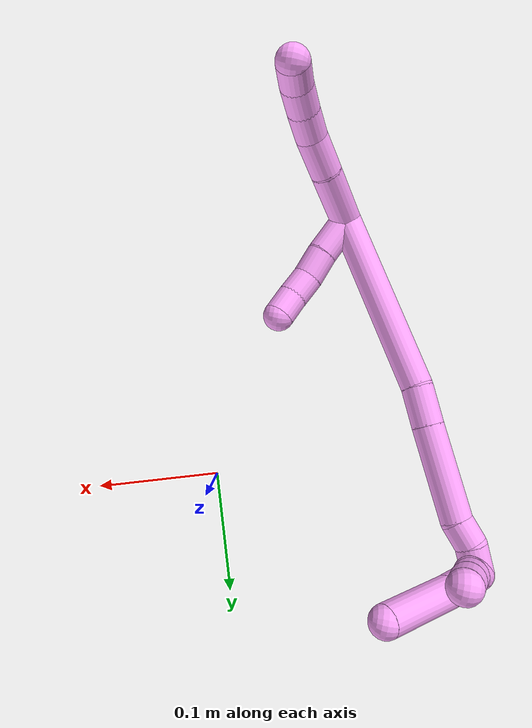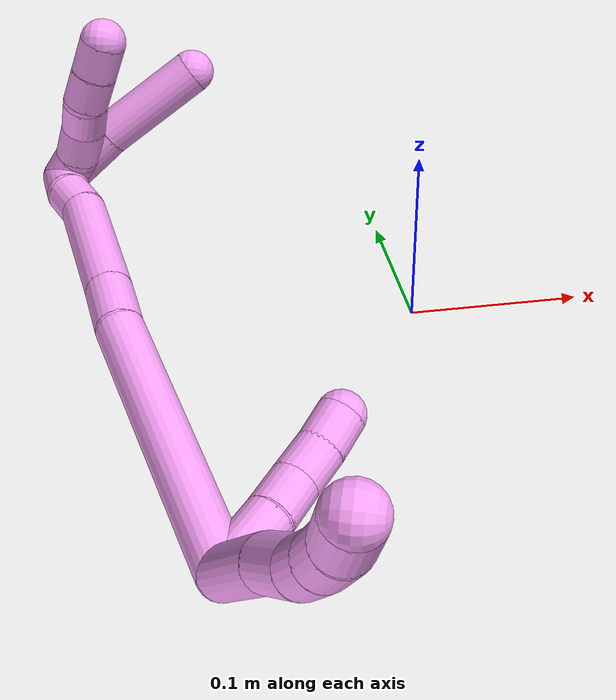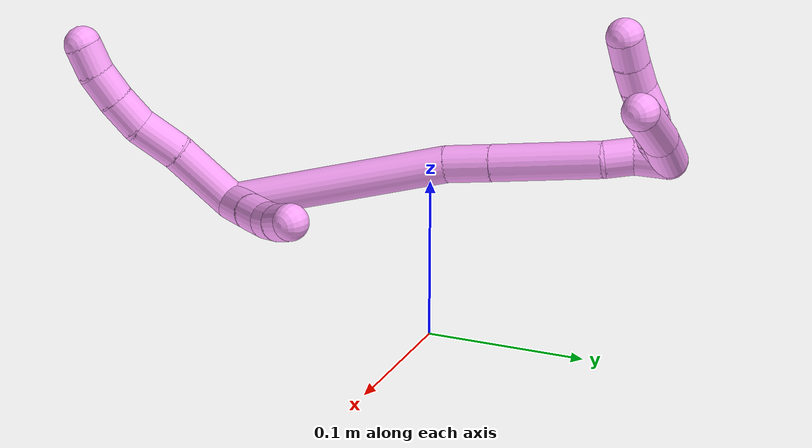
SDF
<sdf version="1.7">
 <world name="default">
  <model name="photoneo_s_sensor">
   <static>1</static>
   <pose>0 0 2 1.57079 1.57079 3.14159</pose>
   <link name="link">
    <inertial><mass>0.1</mass></inertial>
    <sensor name="sensor" type="depth">
     <update_rate>30</update_rate>
     <camera>
      <horizontal_fov>1.22</horizontal_fov>
      <image><width>1920</width><height>1200</height><format>B8G8R8</format></image>
      <clip><near>0.1</near><far>4</far></clip>
      <depth_camera><output>points</output></depth_camera>
     </camera>
     <plugin name="camera_plugin" filename="libgazebo_ros_depth_camera.so">
      <baseline>0.2</baseline>
      <alwaysOn>1</alwaysOn>
      <updateRate>0.0</updateRate>
      <cameraName>camera_ir</cameraName>
      <imageTopicName>/camera/color/image_raw</imageTopicName>
      <cameraInfoTopicName>/camera/color/camera_info</cameraInfoTopicName>
      <depthImageTopicName>/camera/depth/image_raw</depthImageTopicName>
      <depthImageCameraInfoTopicName>/camera/depth/camera_info</depthImageCameraInfoTopicName>
      <pointCloudTopicName>/camera/depth/points</pointCloudTopicName>
      <frameName>fr_optical</frameName>
      <pointCloudCutoff>0.1</pointCloudCutoff>
      <pointCloudCutoffMax>2.0</pointCloudCutoffMax>
      <distortionK1>0</distortionK1>
      <distortionK2>0</distortionK2>
      <distortionK3>0</distortionK3>
      <distortionT1>0</distortionT1>
      <distortionT2>0</distortionT2>
      <CxPrime>0</CxPrime>
      <Cx>0</Cx>
      <Cy>0</Cy>
      <focalLength>0</focalLength>
      <hackBaseline>0</hackBaseline>
     </plugin>
    </sensor>
   </link>
  </model>
  <model name="bin">
   <static>1</static>
   <link name="bottom">
    <collision name="collision-bottom">
     <pose>0 0 -0.01 0 -0 0</pose>
     <geometry><box><size>0.8 0.6 0.02</size></box></geometry>
     <surface>
      <friction><ode><mu>100</mu><mu2>100</mu2></ode></friction>
      <contact><collide_bitmask>65535</collide_bitmask></contact>
     </surface>
    </collision>
   </link>
   <link name="west_wall">
    <collision name="collision-west_wall">
     <pose>-0.41 0 0.1 0 -0 0</pose>
     <geometry><box><size>0.02 0.6 0.2</size></box></geometry>
     <surface>
      <friction><ode><mu>100</mu><mu2>100</mu2></ode></friction>
      <contact><collide_bitmask>65535</collide_bitmask></contact>
     </surface>
    </collision>
   </link>
   <link name="east_wall">
    <collision name="collision-east_wall">
     <pose>0.41 0 0.1 0 -0 0</pose>
     <geometry><box><size>0.02 0.6 0.2</size></box></geometry>
     <surface>
      <friction><ode><mu>100</mu><mu2>100</mu2></ode></friction>
      <contact><collide_bitmask>65535</collide_bitmask></contact>
     </surface>
    </collision>
   </link>
   <link name="south_wall">
    <collision name="collision-south_wall">
     <pose>0 -0.31 0.1 0 -0 0</pose>
     <geometry><box><size>0.8 0.02 0.2</size></box></geometry>
     <surface>
      <friction><ode><mu>100</mu><mu2>100</mu2></ode></friction>
      <contact><collide_bitmask>65535</collide_bitmask></contact>
     </surface>
    </collision>
   </link>
   <link name="north_wall">
    <collision name="collision-north_wall">
     <pose>0 0.31 0.1 0 -0 0</pose>
     <geometry><box><size>0.8 0.02 0.2</size></box></geometry>
     <surface>
      <friction><ode><mu>100</mu><mu2>100</mu2></ode></friction>
      <contact><collide_bitmask>65535</collide_bitmask></contact>
     </surface>
    </collision>
   </link>
  </model>
  <model name="4">
   <static>0</static>
   <link name="4">
    <collision name="collision-cylinder-e_1_2_8">
     <pose>0.022707 0.001949 -0.011882 -2.97899 1.08322 -2.87236</pose>
     <geometry><cylinder><radius>0.0125</radius><length>0.051403</length></cylinder></geometry>
     <surface>
      <friction><ode><mu>1.16</mu><mu2>1.16</mu2><slip1>0</slip1><slip2>0</slip2></ode></friction>
      <contact><ode><kp>1e+06</kp><kd>1</kd><max_vel>0</max_vel><min_depth>0.001</min_depth></ode></contact>
     </surface>
    </collision>
    <visual name="visual-cylinder-e_1_2_8">
     <pose>0.022707 0.001949 -0.011882 -2.97899 1.08322 -2.87236</pose>
     <geometry><cylinder><radius>0.0125</radius><length>0.051403</length></cylinder></geometry>
     <material><ambient>1 0.65098 0.996078 1</ambient></material>
    </visual>
    <collision name="collision-cylinder-e_2_8_9">
     <pose>0.058932 0.003009 -0.031648 3.02926 1.04008 2.94584</pose>
     <geometry><cylinder><radius>0.0125</radius><length>0.031349</length></cylinder></geometry>
     <surface>
      <friction><ode><mu>1.16</mu><mu2>1.16</mu2><slip1>0</slip1><slip2>0</slip2></ode></friction>
      <contact><ode><kp>1e+06</kp><kd>1</kd><max_vel>0</max_vel><min_depth>0.001</min_depth></ode></contact>
     </surface>
    </collision>
    <visual name="visual-cylinder-e_2_8_9">
     <pose>0.058932 0.003009 -0.031648 3.02926 1.04008 2.94584</pose>
     <geometry><cylinder><radius>0.0125</radius><length>0.031349</length></cylinder></geometry>
     <material><ambient>1 0.65098 0.996078 1</ambient></material>
    </visual>
    <collision name="collision-cylinder-e_3_9_10">
     <pose>0.083352 0.003489 -0.043947 -2.84084 1.16972 -2.69166</pose>
     <geometry><cylinder><radius>0.0125</radius><length>0.023682</length></cylinder></geometry>
     <surface>
      <friction><ode><mu>1.16</mu><mu2>1.16</mu2><slip1>0</slip1><slip2>0</slip2></ode></friction>
      <contact><ode><kp>1e+06</kp><kd>1</kd><max_vel>0</max_vel><min_depth>0.001</min_depth></ode></contact>
     </surface>
    </collision>
    <visual name="visual-cylinder-e_3_9_10">
     <pose>0.083352 0.003489 -0.043947 -2.84084 1.16972 -2.69166</pose>
     <geometry><cylinder><radius>0.0125</radius><length>0.023682</length></cylinder></geometry>
     <material><ambient>1 0.65098 0.996078 1</ambient></material>
    </visual>
    <collision name="collision-cylinder-e_4_10_11">
     <pose>0.104671 0.007083 -0.051896 -2.57981 1.18961 -2.33537</pose>
     <geometry><cylinder><radius>0.0125</radius><length>0.022446</length></cylinder></geometry>
     <surface>
      <friction><ode><mu>1.16</mu><mu2>1.16</mu2><slip1>0</slip1><slip2>0</slip2></ode></friction>
      <contact><ode><kp>1e+06</kp><kd>1</kd><max_vel>0</max_vel><min_depth>0.001</min_depth></ode></contact>
     </surface>
    </collision>
    <visual name="visual-cylinder-e_4_10_11">
     <pose>0.104671 0.007083 -0.051896 -2.57981 1.18961 -2.33537</pose>
     <geometry><cylinder><radius>0.0125</radius><length>0.022446</length></cylinder></geometry>
     <material><ambient>1 0.65098 0.996078 1</ambient></material>
    </visual>
    <collision name="collision-cylinder-e_5_11_6">
     <pose>0.124808 0.012937 -0.057391 -2.0664 1.16937 -1.67518</pose>
     <geometry><cylinder><radius>0.0125</radius><length>0.021119</length></cylinder></geometry>
     <surface>
      <friction><ode><mu>1.16</mu><mu2>1.16</mu2><slip1>0</slip1><slip2>0</slip2></ode></friction>
      <contact><ode><kp>1e+06</kp><kd>1</kd><max_vel>0</max_vel><min_depth>0.001</min_depth></ode></contact>
     </surface>
    </collision>
    <visual name="visual-cylinder-e_5_11_6">
     <pose>0.124808 0.012937 -0.057391 -2.0664 1.16937 -1.67518</pose>
     <geometry><cylinder><radius>0.0125</radius><length>0.021119</length></cylinder></geometry>
     <material><ambient>1 0.65098 0.996078 1</ambient></material>
    </visual>
    <collision name="collision-cylinder-e_1_2_12">
     <pose>-0.008325 0.013435 -0.00728 -2.06737 -0.498856 0.808406</pose>
     <geometry><cylinder><radius>0.0125</radius><length>0.034803</length></cylinder></geometry>
     <surface>
      <friction><ode><mu>1.16</mu><mu2>1.16</mu2><slip1>0</slip1><slip2>0</slip2></ode></friction>
      <contact><ode><kp>1e+06</kp><kd>1</kd><max_vel>0</max_vel><min_depth>0.001</min_depth></ode></contact>
     </surface>
    </collision>
    <visual name="visual-cylinder-e_1_2_12">
     <pose>-0.008325 0.013435 -0.00728 -2.06737 -0.498856 0.808406</pose>
     <geometry><cylinder><radius>0.0125</radius><length>0.034803</length></cylinder></geometry>
     <material><ambient>1 0.65098 0.996078 1</ambient></material>
    </visual>
    <collision name="collision-cylinder-e_2_12_13">
     <pose>-0.023028 0.035834 -0.018536 -1.98825 -0.576664 0.85568</pose>
     <geometry><cylinder><radius>0.0125</radius><length>0.023394</length></cylinder></geometry>
     <surface>
      <friction><ode><mu>1.16</mu><mu2>1.16</mu2><slip1>0</slip1><slip2>0</slip2></ode></friction>
      <contact><ode><kp>1e+06</kp><kd>1</kd><max_vel>0</max_vel><min_depth>0.001</min_depth></ode></contact>
     </surface>
    </collision>
    <visual name="visual-cylinder-e_2_12_13">
     <pose>-0.023028 0.035834 -0.018536 -1.98825 -0.576664 0.85568</pose>
     <geometry><cylinder><radius>0.0125</radius><length>0.023394</length></cylinder></geometry>
     <material><ambient>1 0.65098 0.996078 1</ambient></material>
    </visual>
    <collision name="collision-cylinder-e_3_13_14">
     <pose>-0.033205 0.053654 -0.027046 -2.04402 -0.364772 0.585926</pose>
     <geometry><cylinder><radius>0.0125</radius><length>0.021301</length></cylinder></geometry>
     <surface>
      <friction><ode><mu>1.16</mu><mu2>1.16</mu2><slip1>0</slip1><slip2>0</slip2></ode></friction>
      <contact><ode><kp>1e+06</kp><kd>1</kd><max_vel>0</max_vel><min_depth>0.001</min_depth></ode></contact>
     </surface>
    </collision>
    <visual name="visual-cylinder-e_3_13_14">
     <pose>-0.033205 0.053654 -0.027046 -2.04402 -0.364772 0.585926</pose>
     <geometry><cylinder><radius>0.0125</radius><length>0.021301</length></cylinder></geometry>
     <material><ambient>1 0.65098 0.996078 1</ambient></material>
    </visual>
    <collision name="collision-cylinder-e_4_14_5">
     <pose>-0.039951 0.071553 -0.035405 -1.97087 -0.291518 0.435895</pose>
     <geometry><cylinder><radius>0.0125</radius><length>0.020501</length></cylinder></geometry>
     <surface>
      <friction><ode><mu>1.16</mu><mu2>1.16</mu2><slip1>0</slip1><slip2>0</slip2></ode></friction>
      <contact><ode><kp>1e+06</kp><kd>1</kd><max_vel>0</max_vel><min_depth>0.001</min_depth></ode></contact>
     </surface>
    </collision>
    <visual name="visual-cylinder-e_4_14_5">
     <pose>-0.039951 0.071553 -0.035405 -1.97087 -0.291518 0.435895</pose>
     <geometry><cylinder><radius>0.0125</radius><length>0.020501</length></cylinder></geometry>
     <material><ambient>1 0.65098 0.996078 1</ambient></material>
    </visual>
    <collision name="collision-cylinder-e_1_2_15">
     <pose>-0.027914 0.057681 0.038848 -0.97808 -0.381705 0.204909</pose>
     <geometry><cylinder><radius>0.0125</radius><length>0.149873</length></cylinder></geometry>
     <surface>
      <friction><ode><mu>1.16</mu><mu2>1.16</mu2><slip1>0</slip1><slip2>0</slip2></ode></friction>
      <contact><ode><kp>1e+06</kp><kd>1</kd><max_vel>0</max_vel><min_depth>0.001</min_depth></ode></contact>
     </surface>
    </collision>
    <visual name="visual-cylinder-e_1_2_15">
     <pose>-0.027914 0.057681 0.038848 -0.97808 -0.381705 0.204909</pose>
     <geometry><cylinder><radius>0.0125</radius><length>0.149873</length></cylinder></geometry>
     <material><ambient>1 0.65098 0.996078 1</ambient></material>
    </visual>
    <collision name="collision-cylinder-e_2_15_16">
     <pose>-0.063694 0.127117 0.084352 -1.05557 -0.527323 0.312166</pose>
     <geometry><cylinder><radius>0.0125</radius><length>0.031263</length></cylinder></geometry>
     <surface>
      <friction><ode><mu>1.16</mu><mu2>1.16</mu2><slip1>0</slip1><slip2>0</slip2></ode></friction>
      <contact><ode><kp>1e+06</kp><kd>1</kd><max_vel>0</max_vel><min_depth>0.001</min_depth></ode></contact>
     </surface>
    </collision>
    <visual name="visual-cylinder-e_2_15_16">
     <pose>-0.063694 0.127117 0.084352 -1.05557 -0.527323 0.312166</pose>
     <geometry><cylinder><radius>0.0125</radius><length>0.031263</length></cylinder></geometry>
     <material><ambient>1 0.65098 0.996078 1</ambient></material>
    </visual>
    <collision name="collision-cylinder-e_3_16_17">
     <pose>-0.090347 0.166817 0.107809 -1.0295 -0.522693 0.300284</pose>
     <geometry><cylinder><radius>0.0125</radius><length>0.075263</length></cylinder></geometry>
     <surface>
      <friction><ode><mu>1.16</mu><mu2>1.16</mu2><slip1>0</slip1><slip2>0</slip2></ode></friction>
      <contact><ode><kp>1e+06</kp><kd>1</kd><max_vel>0</max_vel><min_depth>0.001</min_depth></ode></contact>
     </surface>
    </collision>
    <visual name="visual-cylinder-e_3_16_17">
     <pose>-0.090347 0.166817 0.107809 -1.0295 -0.522693 0.300284</pose>
     <geometry><cylinder><radius>0.0125</radius><length>0.075263</length></cylinder></geometry>
     <material><ambient>1 0.65098 0.996078 1</ambient></material>
    </visual>
    <collision name="collision-cylinder-e_4_17_18">
     <pose>-0.113349 0.201196 0.131306 -0.765405 -0.426178 0.173764</pose>
     <geometry><cylinder><radius>0.0125</radius><length>0.020398</length></cylinder></geometry>
     <surface>
      <friction><ode><mu>1.16</mu><mu2>1.16</mu2><slip1>0</slip1><slip2>0</slip2></ode></friction>
      <contact><ode><kp>1e+06</kp><kd>1</kd><max_vel>0</max_vel><min_depth>0.001</min_depth></ode></contact>
     </surface>
    </collision>
    <visual name="visual-cylinder-e_4_17_18">
     <pose>-0.113349 0.201196 0.131306 -0.765405 -0.426178 0.173764</pose>
     <geometry><cylinder><radius>0.0125</radius><length>0.020398</length></cylinder></geometry>
     <material><ambient>1 0.65098 0.996078 1</ambient></material>
    </visual>
    <collision name="collision-cylinder-e_5_18_1">
     <pose>-0.124825 0.215294 0.142815 -1.01011 -0.676059 0.383915</pose>
     <geometry><cylinder><radius>0.0125</radius><length>0.023202</length></cylinder></geometry>
     <surface>
      <friction><ode><mu>1.16</mu><mu2>1.16</mu2><slip1>0</slip1><slip2>0</slip2></ode></friction>
      <contact><ode><kp>1e+06</kp><kd>1</kd><max_vel>0</max_vel><min_depth>0.001</min_depth></ode></contact>
     </surface>
    </collision>
    <visual name="visual-cylinder-e_5_18_1">
     <pose>-0.124825 0.215294 0.142815 -1.01011 -0.676059 0.383915</pose>
     <geometry><cylinder><radius>0.0125</radius><length>0.023202</length></cylinder></geometry>
     <material><ambient>1 0.65098 0.996078 1</ambient></material>
    </visual>
    <collision name="collision-cylinder-e_1_1_19">
     <pose>-0.124577 0.226895 0.142321 -2.50334 0.849034 -1.87912</pose>
     <geometry><cylinder><radius>0.0125</radius><length>0.02</length></cylinder></geometry>
     <surface>
      <friction><ode><mu>1.16</mu><mu2>1.16</mu2><slip1>0</slip1><slip2>0</slip2></ode></friction>
      <contact><ode><kp>1e+06</kp><kd>1</kd><max_vel>0</max_vel><min_depth>0.001</min_depth></ode></contact>
     </surface>
    </collision>
    <visual name="visual-cylinder-e_1_1_19">
     <pose>-0.124577 0.226895 0.142321 -2.50334 0.849034 -1.87912</pose>
     <geometry><cylinder><radius>0.0125</radius><length>0.02</length></cylinder></geometry>
     <material><ambient>1 0.65098 0.996078 1</ambient></material>
    </visual>
    <collision name="collision-cylinder-e_2_19_20">
     <pose>-0.109514 0.236735 0.134179 -2.01846 0.856689 -1.25565</pose>
     <geometry><cylinder><radius>0.0125</radius><length>0.02</length></cylinder></geometry>
     <surface>
      <friction><ode><mu>1.16</mu><mu2>1.16</mu2><slip1>0</slip1><slip2>0</slip2></ode></friction>
      <contact><ode><kp>1e+06</kp><kd>1</kd><max_vel>0</max_vel><min_depth>0.001</min_depth></ode></contact>
     </surface>
    </collision>
    <visual name="visual-cylinder-e_2_19_20">
     <pose>-0.109514 0.236735 0.134179 -2.01846 0.856689 -1.25565</pose>
     <geometry><cylinder><radius>0.0125</radius><length>0.02</length></cylinder></geometry>
     <material><ambient>1 0.65098 0.996078 1</ambient></material>
    </visual>
    <collision name="collision-cylinder-e_3_20_21">
     <pose>-0.092968 0.246391 0.129081 -2.1138 1.11726 -1.67252</pose>
     <geometry><cylinder><radius>0.0125</radius><length>0.02</length></cylinder></geometry>
     <surface>
      <friction><ode><mu>1.16</mu><mu2>1.16</mu2><slip1>0</slip1><slip2>0</slip2></ode></friction>
      <contact><ode><kp>1e+06</kp><kd>1</kd><max_vel>0</max_vel><min_depth>0.001</min_depth></ode></contact>
     </surface>
    </collision>
    <visual name="visual-cylinder-e_3_20_21">
     <pose>-0.092968 0.246391 0.129081 -2.1138 1.11726 -1.67252</pose>
     <geometry><cylinder><radius>0.0125</radius><length>0.02</length></cylinder></geometry>
     <material><ambient>1 0.65098 0.996078 1</ambient></material>
    </visual>
    <collision name="collision-cylinder-e_4_21_22">
     <pose>-0.076482 0.255818 0.123415 -2.11066 0.84764 -1.34499</pose>
     <geometry><cylinder><radius>0.0125</radius><length>0.02</length></cylinder></geometry>
     <surface>
      <friction><ode><mu>1.16</mu><mu2>1.16</mu2><slip1>0</slip1><slip2>0</slip2></ode></friction>
      <contact><ode><kp>1e+06</kp><kd>1</kd><max_vel>0</max_vel><min_depth>0.001</min_depth></ode></contact>
     </surface>
    </collision>
    <visual name="visual-cylinder-e_4_21_22">
     <pose>-0.076482 0.255818 0.123415 -2.11066 0.84764 -1.34499</pose>
     <geometry><cylinder><radius>0.0125</radius><length>0.02</length></cylinder></geometry>
     <material><ambient>1 0.65098 0.996078 1</ambient></material>
    </visual>
    <collision name="collision-cylinder-e_5_22_4">
     <pose>-0.061789 0.267614 0.116731 -2.0631 0.803158 -1.23434</pose>
     <geometry><cylinder><radius>0.0125</radius><length>0.02</length></cylinder></geometry>
     <surface>
      <friction><ode><mu>1.16</mu><mu2>1.16</mu2><slip1>0</slip1><slip2>0</slip2></ode></friction>
      <contact><ode><kp>1e+06</kp><kd>1</kd><max_vel>0</max_vel><min_depth>0.001</min_depth></ode></contact>
     </surface>
    </collision>
    <visual name="visual-cylinder-e_5_22_4">
     <pose>-0.061789 0.267614 0.116731 -2.0631 0.803158 -1.23434</pose>
     <geometry><cylinder><radius>0.0125</radius><length>0.02</length></cylinder></geometry>
     <material><ambient>1 0.65098 0.996078 1</ambient></material>
    </visual>
    <collision name="collision-cylinder-e_1_1_23">
     <pose>-0.1259 0.235368 0.134291 -2.39218 0.327256 -0.794923</pose>
     <geometry><cylinder><radius>0.0125</radius><length>0.038475</length></cylinder></geometry>
     <surface>
      <friction><ode><mu>1.16</mu><mu2>1.16</mu2><slip1>0</slip1><slip2>0</slip2></ode></friction>
      <contact><ode><kp>1e+06</kp><kd>1</kd><max_vel>0</max_vel><min_depth>0.001</min_depth></ode></contact>
     </surface>
    </collision>
    <visual name="visual-cylinder-e_1_1_23">
     <pose>-0.1259 0.235368 0.134291 -2.39218 0.327256 -0.794923</pose>
     <geometry><cylinder><radius>0.0125</radius><length>0.038475</length></cylinder></geometry>
     <material><ambient>1 0.65098 0.996078 1</ambient></material>
    </visual>
    <collision name="collision-cylinder-e_2_23_3">
     <pose>-0.112157 0.266426 0.097687 -2.46594 0.248288 -0.682631</pose>
     <geometry><cylinder><radius>0.0125</radius><length>0.061525</length></cylinder></geometry>
     <surface>
      <friction><ode><mu>1.16</mu><mu2>1.16</mu2><slip1>0</slip1><slip2>0</slip2></ode></friction>
      <contact><ode><kp>1e+06</kp><kd>1</kd><max_vel>0</max_vel><min_depth>0.001</min_depth></ode></contact>
     </surface>
    </collision>
    <visual name="visual-cylinder-e_2_23_3">
     <pose>-0.112157 0.266426 0.097687 -2.46594 0.248288 -0.682631</pose>
     <geometry><cylinder><radius>0.0125</radius><length>0.061525</length></cylinder></geometry>
     <material><ambient>1 0.65098 0.996078 1</ambient></material>
    </visual>
    <collision name="collision-sphere-3">
     <pose>-0.104597 0.285075 0.074419 0 -0 0</pose>
     <geometry><sphere><radius>0.0125</radius></sphere></geometry>
     <surface>
      <friction><ode><mu>1.16</mu><mu2>1.16</mu2><slip1>0</slip1><slip2>0</slip2></ode></friction>
      <contact><ode><kp>1e+06</kp><kd>1</kd><max_vel>0</max_vel><min_depth>0.001</min_depth></ode></contact>
     </surface>
    </collision>
    <visual name="visual-sphere-3">
     <pose>-0.104597 0.285075 0.074419 0 -0 0</pose>
     <geometry><sphere><radius>0.0125</radius></sphere></geometry>
     <material><ambient>1 0.65098 0.996078 1</ambient></material>
    </visual>
    <collision name="collision-sphere-23">
     <pose>-0.119716 0.247777 0.120955 0 -0 0</pose>
     <geometry><sphere><radius>0.0125</radius></sphere></geometry>
     <surface>
      <friction><ode><mu>1.16</mu><mu2>1.16</mu2><slip1>0</slip1><slip2>0</slip2></ode></friction>
      <contact><ode><kp>1e+06</kp><kd>1</kd><max_vel>0</max_vel><min_depth>0.001</min_depth></ode></contact>
     </surface>
    </collision>
    <visual name="visual-sphere-23">
     <pose>-0.119716 0.247777 0.120955 0 -0 0</pose>
     <geometry><sphere><radius>0.0125</radius></sphere></geometry>
     <material><ambient>1 0.65098 0.996078 1</ambient></material>
    </visual>
    <collision name="collision-sphere-4">
     <pose>-0.054594 0.273734 0.113449 0 -0 0</pose>
     <geometry><sphere><radius>0.0125</radius></sphere></geometry>
     <surface>
      <friction><ode><mu>1.16</mu><mu2>1.16</mu2><slip1>0</slip1><slip2>0</slip2></ode></friction>
      <contact><ode><kp>1e+06</kp><kd>1</kd><max_vel>0</max_vel><min_depth>0.001</min_depth></ode></contact>
     </surface>
    </collision>
    <visual name="visual-sphere-4">
     <pose>-0.054594 0.273734 0.113449 0 -0 0</pose>
     <geometry><sphere><radius>0.0125</radius></sphere></geometry>
     <material><ambient>1 0.65098 0.996078 1</ambient></material>
    </visual>
    <collision name="collision-sphere-22">
     <pose>-0.068985 0.261495 0.120014 0 -0 0</pose>
     <geometry><sphere><radius>0.0125</radius></sphere></geometry>
     <surface>
      <friction><ode><mu>1.16</mu><mu2>1.16</mu2><slip1>0</slip1><slip2>0</slip2></ode></friction>
      <contact><ode><kp>1e+06</kp><kd>1</kd><max_vel>0</max_vel><min_depth>0.001</min_depth></ode></contact>
     </surface>
    </collision>
    <visual name="visual-sphere-22">
     <pose>-0.068985 0.261495 0.120014 0 -0 0</pose>
     <geometry><sphere><radius>0.0125</radius></sphere></geometry>
     <material><ambient>1 0.65098 0.996078 1</ambient></material>
    </visual>
    <collision name="collision-sphere-21">
     <pose>-0.083979 0.250142 0.126817 0 -0 0</pose>
     <geometry><sphere><radius>0.0125</radius></sphere></geometry>
     <surface>
      <friction><ode><mu>1.16</mu><mu2>1.16</mu2><slip1>0</slip1><slip2>0</slip2></ode></friction>
      <contact><ode><kp>1e+06</kp><kd>1</kd><max_vel>0</max_vel><min_depth>0.001</min_depth></ode></contact>
     </surface>
    </collision>
    <visual name="visual-sphere-21">
     <pose>-0.083979 0.250142 0.126817 0 -0 0</pose>
     <geometry><sphere><radius>0.0125</radius></sphere></geometry>
     <material><ambient>1 0.65098 0.996078 1</ambient></material>
    </visual>
    <collision name="collision-sphere-20">
     <pose>-0.101957 0.242639 0.131344 0 -0 0</pose>
     <geometry><sphere><radius>0.0125</radius></sphere></geometry>
     <surface>
      <friction><ode><mu>1.16</mu><mu2>1.16</mu2><slip1>0</slip1><slip2>0</slip2></ode></friction>
      <contact><ode><kp>1e+06</kp><kd>1</kd><max_vel>0</max_vel><min_depth>0.001</min_depth></ode></contact>
     </surface>
    </collision>
    <visual name="visual-sphere-20">
     <pose>-0.101957 0.242639 0.131344 0 -0 0</pose>
     <geometry><sphere><radius>0.0125</radius></sphere></geometry>
     <material><ambient>1 0.65098 0.996078 1</ambient></material>
    </visual>
    <collision name="collision-sphere-6">
     <pose>0.134528 0.016566 -0.059354 0 -0 0</pose>
     <geometry><sphere><radius>0.0125</radius></sphere></geometry>
     <surface>
      <friction><ode><mu>1.16</mu><mu2>1.16</mu2><slip1>0</slip1><slip2>0</slip2></ode></friction>
      <contact><ode><kp>1e+06</kp><kd>1</kd><max_vel>0</max_vel><min_depth>0.001</min_depth></ode></contact>
     </surface>
    </collision>
    <visual name="visual-sphere-6">
     <pose>0.134528 0.016566 -0.059354 0 -0 0</pose>
     <geometry><sphere><radius>0.0125</radius></sphere></geometry>
     <material><ambient>1 0.65098 0.996078 1</ambient></material>
    </visual>
    <collision name="collision-sphere-11">
     <pose>0.115088 0.009307 -0.055429 0 -0 0</pose>
     <geometry><sphere><radius>0.0125</radius></sphere></geometry>
     <surface>
      <friction><ode><mu>1.16</mu><mu2>1.16</mu2><slip1>0</slip1><slip2>0</slip2></ode></friction>
      <contact><ode><kp>1e+06</kp><kd>1</kd><max_vel>0</max_vel><min_depth>0.001</min_depth></ode></contact>
     </surface>
    </collision>
    <visual name="visual-sphere-11">
     <pose>0.115088 0.009307 -0.055429 0 -0 0</pose>
     <geometry><sphere><radius>0.0125</radius></sphere></geometry>
     <material><ambient>1 0.65098 0.996078 1</ambient></material>
    </visual>
    <collision name="collision-sphere-10">
     <pose>0.094253 0.004859 -0.048362 0 -0 0</pose>
     <geometry><sphere><radius>0.0125</radius></sphere></geometry>
     <surface>
      <friction><ode><mu>1.16</mu><mu2>1.16</mu2><slip1>0</slip1><slip2>0</slip2></ode></friction>
      <contact><ode><kp>1e+06</kp><kd>1</kd><max_vel>0</max_vel><min_depth>0.001</min_depth></ode></contact>
     </surface>
    </collision>
    <visual name="visual-sphere-10">
     <pose>0.094253 0.004859 -0.048362 0 -0 0</pose>
     <geometry><sphere><radius>0.0125</radius></sphere></geometry>
     <material><ambient>1 0.65098 0.996078 1</ambient></material>
    </visual>
    <collision name="collision-sphere-9">
     <pose>0.072451 0.00212 -0.039532 0 -0 0</pose>
     <geometry><sphere><radius>0.0125</radius></sphere></geometry>
     <surface>
      <friction><ode><mu>1.16</mu><mu2>1.16</mu2><slip1>0</slip1><slip2>0</slip2></ode></friction>
      <contact><ode><kp>1e+06</kp><kd>1</kd><max_vel>0</max_vel><min_depth>0.001</min_depth></ode></contact>
     </surface>
    </collision>
    <visual name="visual-sphere-9">
     <pose>0.072451 0.00212 -0.039532 0 -0 0</pose>
     <geometry><sphere><radius>0.0125</radius></sphere></geometry>
     <material><ambient>1 0.65098 0.996078 1</ambient></material>
    </visual>
    <collision name="collision-sphere-2">
     <geometry><sphere><radius>0.0125</radius></sphere></geometry>
     <surface>
      <friction><ode><mu>1.16</mu><mu2>1.16</mu2><slip1>0</slip1><slip2>0</slip2></ode></friction>
      <contact><ode><kp>1e+06</kp><kd>1</kd><max_vel>0</max_vel><min_depth>0.001</min_depth></ode></contact>
     </surface>
    </collision>
    <visual name="visual-sphere-2">
     <geometry><sphere><radius>0.0125</radius></sphere></geometry>
     <material><ambient>1 0.65098 0.996078 1</ambient></material>
    </visual>
    <collision name="collision-sphere-19">
     <pose>-0.117071 0.230831 0.137014 0 -0 0</pose>
     <geometry><sphere><radius>0.0125</radius></sphere></geometry>
     <surface>
      <friction><ode><mu>1.16</mu><mu2>1.16</mu2><slip1>0</slip1><slip2>0</slip2></ode></friction>
      <contact><ode><kp>1e+06</kp><kd>1</kd><max_vel>0</max_vel><min_depth>0.001</min_depth></ode></contact>
     </surface>
    </collision>
    <visual name="visual-sphere-19">
     <pose>-0.117071 0.230831 0.137014 0 -0 0</pose>
     <geometry><sphere><radius>0.0125</radius></sphere></geometry>
     <material><ambient>1 0.65098 0.996078 1</ambient></material>
    </visual>
    <collision name="collision-sphere-8">
     <pose>0.045413 0.003899 -0.023764 0 -0 0</pose>
     <geometry><sphere><radius>0.0125</radius></sphere></geometry>
     <surface>
      <friction><ode><mu>1.16</mu><mu2>1.16</mu2><slip1>0</slip1><slip2>0</slip2></ode></friction>
      <contact><ode><kp>1e+06</kp><kd>1</kd><max_vel>0</max_vel><min_depth>0.001</min_depth></ode></contact>
     </surface>
    </collision>
    <visual name="visual-sphere-8">
     <pose>0.045413 0.003899 -0.023764 0 -0 0</pose>
     <geometry><sphere><radius>0.0125</radius></sphere></geometry>
     <material><ambient>1 0.65098 0.996078 1</ambient></material>
    </visual>
    <collision name="collision-sphere-12">
     <pose>-0.016651 0.026871 -0.01456 0 -0 0</pose>
     <geometry><sphere><radius>0.0125</radius></sphere></geometry>
     <surface>
      <friction><ode><mu>1.16</mu><mu2>1.16</mu2><slip1>0</slip1><slip2>0</slip2></ode></friction>
      <contact><ode><kp>1e+06</kp><kd>1</kd><max_vel>0</max_vel><min_depth>0.001</min_depth></ode></contact>
     </surface>
    </collision>
    <visual name="visual-sphere-12">
     <pose>-0.016651 0.026871 -0.01456 0 -0 0</pose>
     <geometry><sphere><radius>0.0125</radius></sphere></geometry>
     <material><ambient>1 0.65098 0.996078 1</ambient></material>
    </visual>
    <collision name="collision-sphere-13">
     <pose>-0.029406 0.044798 -0.022511 0 -0 0</pose>
     <geometry><sphere><radius>0.0125</radius></sphere></geometry>
     <surface>
      <friction><ode><mu>1.16</mu><mu2>1.16</mu2><slip1>0</slip1><slip2>0</slip2></ode></friction>
      <contact><ode><kp>1e+06</kp><kd>1</kd><max_vel>0</max_vel><min_depth>0.001</min_depth></ode></contact>
     </surface>
    </collision>
    <visual name="visual-sphere-13">
     <pose>-0.029406 0.044798 -0.022511 0 -0 0</pose>
     <geometry><sphere><radius>0.0125</radius></sphere></geometry>
     <material><ambient>1 0.65098 0.996078 1</ambient></material>
    </visual>
    <collision name="collision-sphere-14">
     <pose>-0.037005 0.06251 -0.031581 0 -0 0</pose>
     <geometry><sphere><radius>0.0125</radius></sphere></geometry>
     <surface>
      <friction><ode><mu>1.16</mu><mu2>1.16</mu2><slip1>0</slip1><slip2>0</slip2></ode></friction>
      <contact><ode><kp>1e+06</kp><kd>1</kd><max_vel>0</max_vel><min_depth>0.001</min_depth></ode></contact>
     </surface>
    </collision>
    <visual name="visual-sphere-14">
     <pose>-0.037005 0.06251 -0.031581 0 -0 0</pose>
     <geometry><sphere><radius>0.0125</radius></sphere></geometry>
     <material><ambient>1 0.65098 0.996078 1</ambient></material>
    </visual>
    <collision name="collision-sphere-5">
     <pose>-0.042897 0.080596 -0.039229 0 -0 0</pose>
     <geometry><sphere><radius>0.0125</radius></sphere></geometry>
     <surface>
      <friction><ode><mu>1.16</mu><mu2>1.16</mu2><slip1>0</slip1><slip2>0</slip2></ode></friction>
      <contact><ode><kp>1e+06</kp><kd>1</kd><max_vel>0</max_vel><min_depth>0.001</min_depth></ode></contact>
     </surface>
    </collision>
    <visual name="visual-sphere-5">
     <pose>-0.042897 0.080596 -0.039229 0 -0 0</pose>
     <geometry><sphere><radius>0.0125</radius></sphere></geometry>
     <material><ambient>1 0.65098 0.996078 1</ambient></material>
    </visual>
    <collision name="collision-sphere-15">
     <pose>-0.055828 0.115362 0.077696 0 -0 0</pose>
     <geometry><sphere><radius>0.0125</radius></sphere></geometry>
     <surface>
      <friction><ode><mu>1.16</mu><mu2>1.16</mu2><slip1>0</slip1><slip2>0</slip2></ode></friction>
      <contact><ode><kp>1e+06</kp><kd>1</kd><max_vel>0</max_vel><min_depth>0.001</min_depth></ode></contact>
     </surface>
    </collision>
    <visual name="visual-sphere-15">
     <pose>-0.055828 0.115362 0.077696 0 -0 0</pose>
     <geometry><sphere><radius>0.0125</radius></sphere></geometry>
     <material><ambient>1 0.65098 0.996078 1</ambient></material>
    </visual>
    <collision name="collision-sphere-16">
     <pose>-0.071561 0.138871 0.091008 0 -0 0</pose>
     <geometry><sphere><radius>0.0125</radius></sphere></geometry>
     <surface>
      <friction><ode><mu>1.16</mu><mu2>1.16</mu2><slip1>0</slip1><slip2>0</slip2></ode></friction>
      <contact><ode><kp>1e+06</kp><kd>1</kd><max_vel>0</max_vel><min_depth>0.001</min_depth></ode></contact>
     </surface>
    </collision>
    <visual name="visual-sphere-16">
     <pose>-0.071561 0.138871 0.091008 0 -0 0</pose>
     <geometry><sphere><radius>0.0125</radius></sphere></geometry>
     <material><ambient>1 0.65098 0.996078 1</ambient></material>
    </visual>
    <collision name="collision-sphere-17">
     <pose>-0.109133 0.194762 0.124609 0 -0 0</pose>
     <geometry><sphere><radius>0.0125</radius></sphere></geometry>
     <surface>
      <friction><ode><mu>1.16</mu><mu2>1.16</mu2><slip1>0</slip1><slip2>0</slip2></ode></friction>
      <contact><ode><kp>1e+06</kp><kd>1</kd><max_vel>0</max_vel><min_depth>0.001</min_depth></ode></contact>
     </surface>
    </collision>
    <visual name="visual-sphere-17">
     <pose>-0.109133 0.194762 0.124609 0 -0 0</pose>
     <geometry><sphere><radius>0.0125</radius></sphere></geometry>
     <material><ambient>1 0.65098 0.996078 1</ambient></material>
    </visual>
    <collision name="collision-sphere-18">
     <pose>-0.117566 0.207631 0.138003 0 -0 0</pose>
     <geometry><sphere><radius>0.0125</radius></sphere></geometry>
     <surface>
      <friction><ode><mu>1.16</mu><mu2>1.16</mu2><slip1>0</slip1><slip2>0</slip2></ode></friction>
      <contact><ode><kp>1e+06</kp><kd>1</kd><max_vel>0</max_vel><min_depth>0.001</min_depth></ode></contact>
     </surface>
    </collision>
    <visual name="visual-sphere-18">
     <pose>-0.117566 0.207631 0.138003 0 -0 0</pose>
     <geometry><sphere><radius>0.0125</radius></sphere></geometry>
     <material><ambient>1 0.65098 0.996078 1</ambient></material>
    </visual>
    <collision name="collision-sphere-1">
     <pose>-0.132084 0.222958 0.147627 0 -0 0</pose>
     <geometry><sphere><radius>0.0125</radius></sphere></geometry>
     <surface>
      <friction><ode><mu>1.16</mu><mu2>1.16</mu2><slip1>0</slip1><slip2>0</slip2></ode></friction>
      <contact><ode><kp>1e+06</kp><kd>1</kd><max_vel>0</max_vel><min_depth>0.001</min_depth></ode></contact>
     </surface>
    </collision>
    <visual name="visual-sphere-1">
     <pose>-0.132084 0.222958 0.147627 0 -0 0</pose>
     <geometry><sphere><radius>0.0125</radius></sphere></geometry>
     <material><ambient>1 0.65098 0.996078 1</ambient></material>
    </visual>
    <inertial>
     <pose>-0.042153 0.118687 0.052863 0 -0 0</pose>
     <mass>0.75</mass>
     <inertia>
      <ixx>0.000368</ixx>
      <ixy>0</ixy>
      <ixz>0</ixz>
      <iyy>0.000296</iyy>
      <iyz>0</iyz>
      <izz>-0.000189</izz>
     </inertia>
    </inertial>
   </link>
   <pose>-0.130286 -0.197992 0.011874 1.5285 -0.858293 -1.84048</pose>
  </model>
 </world>
</sdf>
